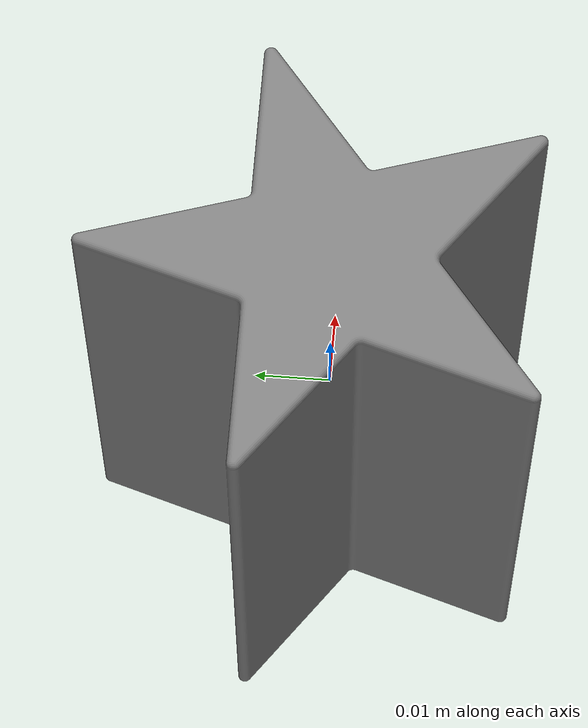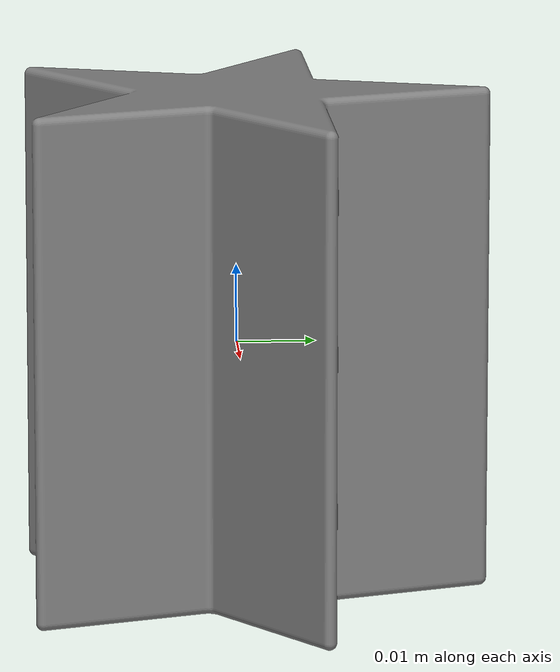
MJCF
<mujoco model="pentaprism">
    <compiler angle="radian"/>
    <default>
        <geom type="mesh" condim="3" margin="0.005" contype="1" conaffinity="1"/>
    </default>
    <asset>
        <mesh name="pentaprism" file="pentaprism.stl" scale="0.0013 0.0013 0.0013"/>
    </asset>
    <worldbody>
        <body name="pentaprism">
            <geom mesh="pentaprism" density="400"/>
        </body>
    </worldbody>
</mujoco>
